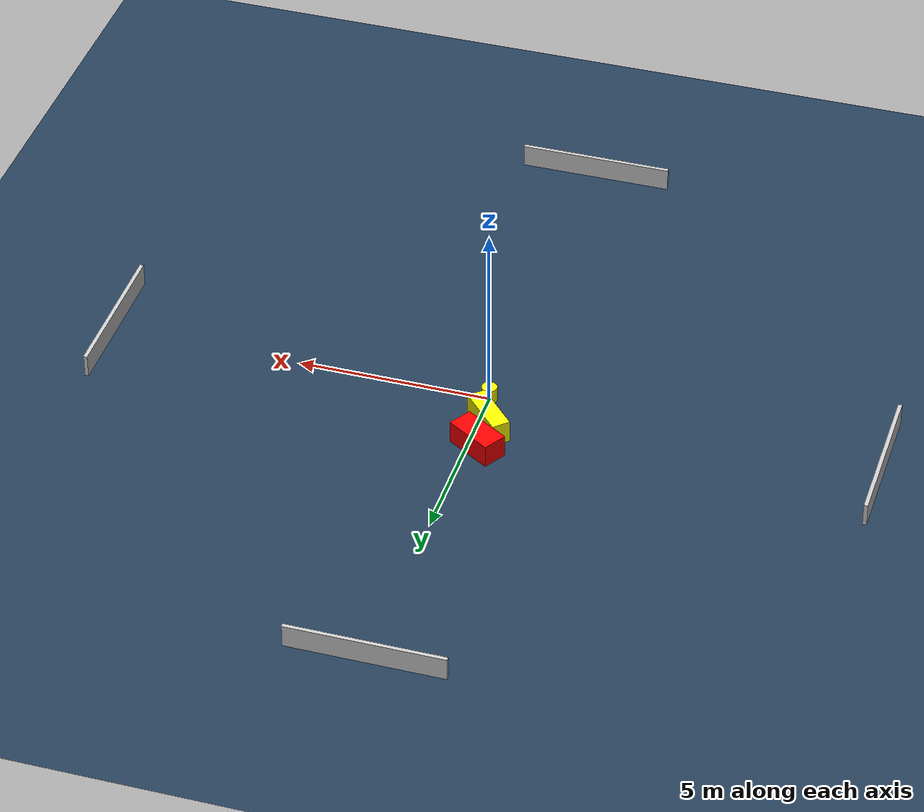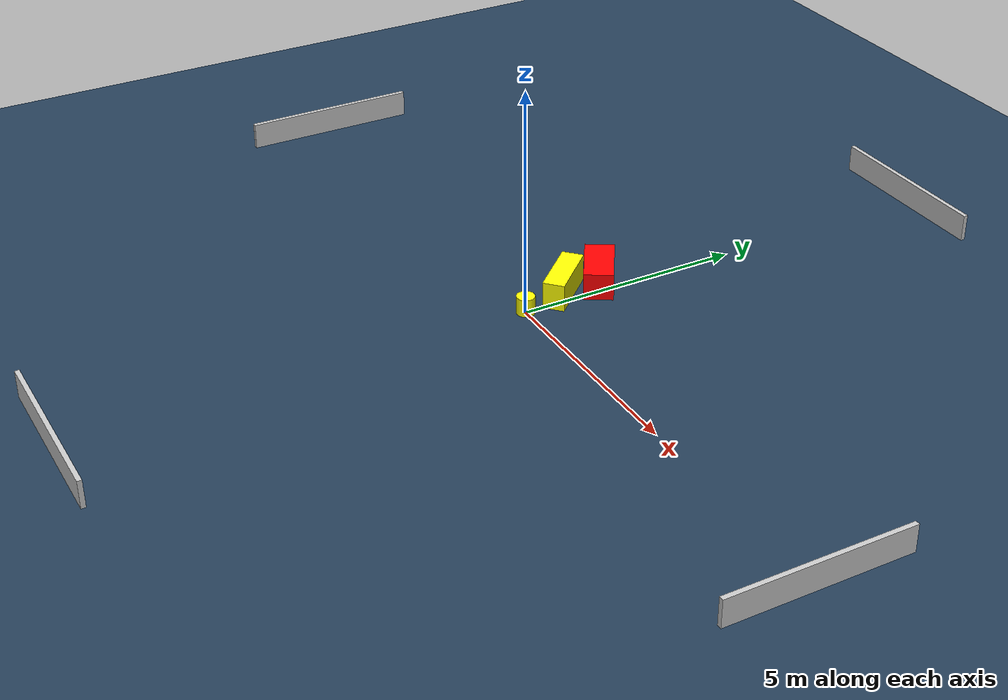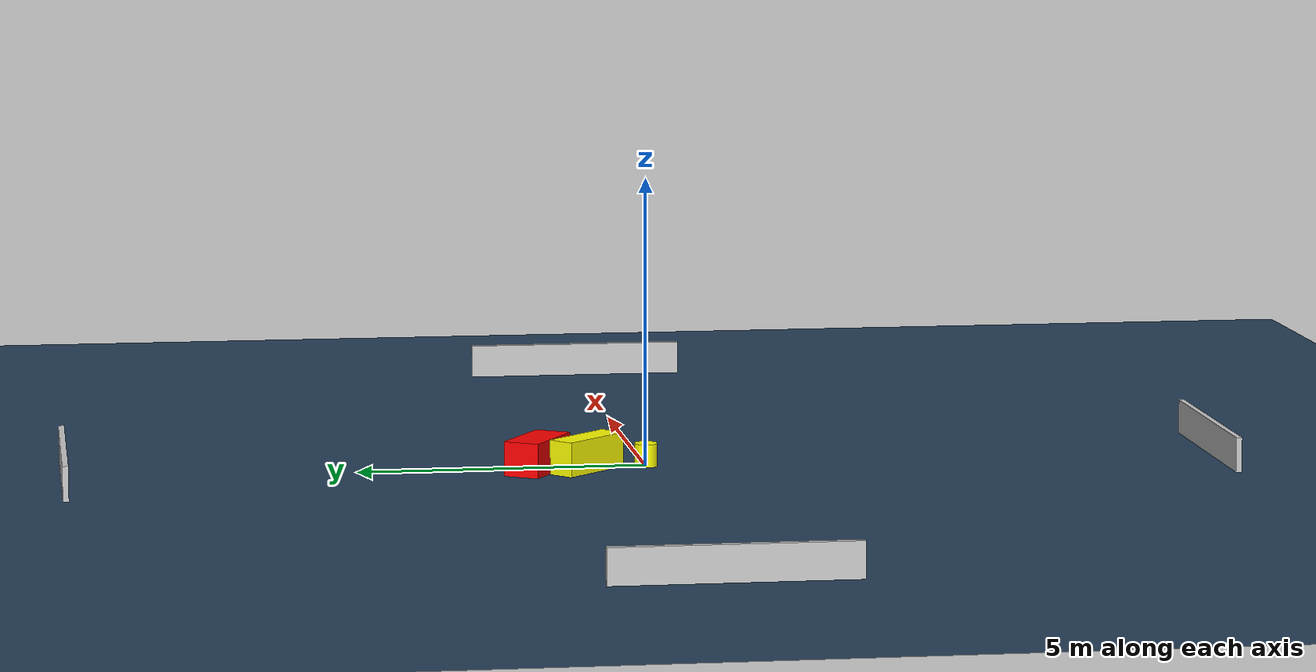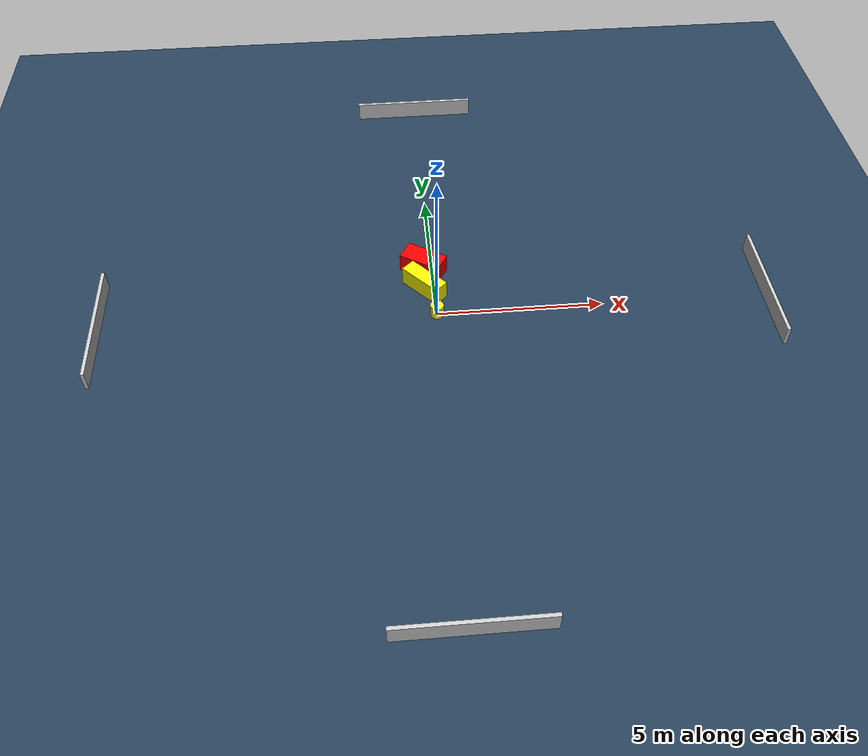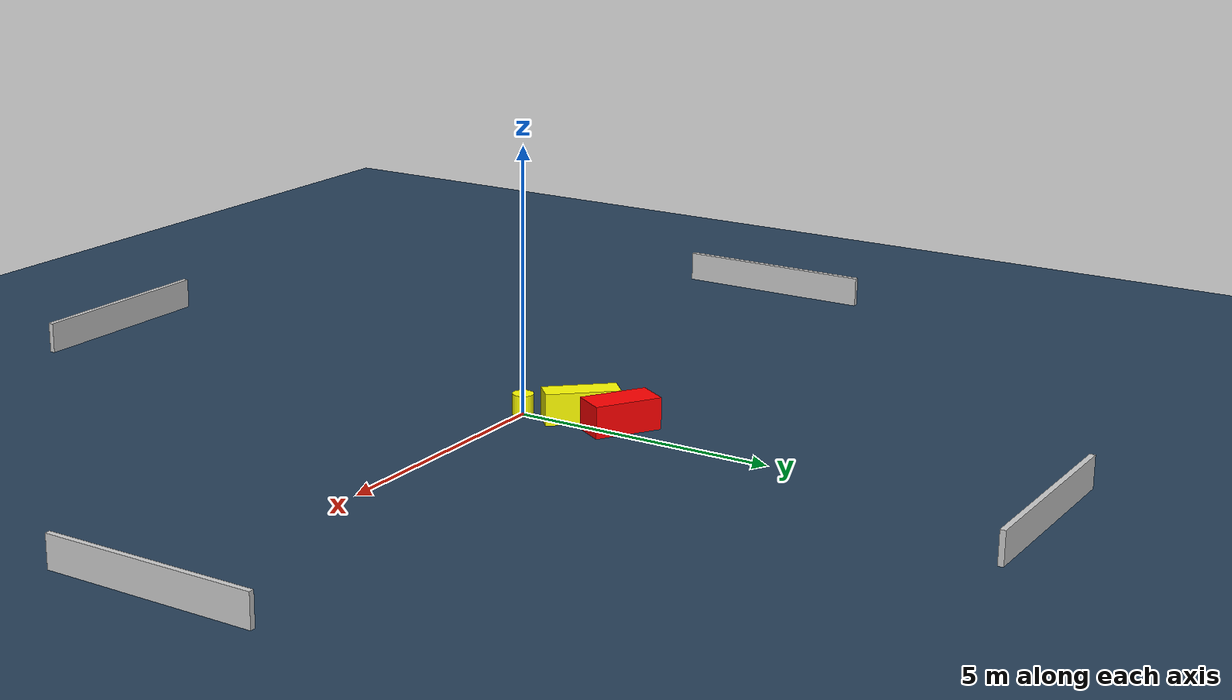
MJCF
<?xml version="1.0" ?>
<mujoco model="generated_environment">
  <option timestep="0.01" integrator="RK4" cone="elliptic"/>
  <default>
    <geom density="1"/>
  </default>
  <asset>
    <texture builtin="gradient" height="3072" name="skybox" rgb1="0.3 0.5 0.7" rgb2="0 0 0" type="skybox" width="512"/>
    <texture builtin="checker" height="300" name="groundplane" rgb1="0.2 0.3 0.4" rgb2="0.1 0.2 0.3" type="2d" width="300"/>
    <material name="groundplane" reflectance="0.2" texrepeat="5 5" texture="groundplane"/>
  </asset>
  <worldbody>
    <light dir="0 0 -1" directional="true" pos="0 0 1.5"/>
    <geom condim="3" friction="0.5 0.005 0.001" material="groundplane" name="floor" pos="0 0 0" size="0 0 0.05" type="plane"/>
    <body name="walls">
      <geom name="wall_1" condim="4" pos="-10.0 0.0 0.3" rgba="0.800000011920929 0.800000011920929 0.800000011920929 1.0" size="0.05 2.0 0.3" type="box"/>
      <geom name="wall_2" condim="4" pos="10.0 0.0 0.3" rgba="0.800000011920929 0.800000011920929 0.800000011920929 1.0" size="0.05 2.0 0.3" type="box"/>
      <geom name="wall_3" condim="4" pos="0.0 -10.0 0.3" rgba="0.800000011920929 0.800000011920929 0.800000011920929 1.0" size="2.0 0.05 0.3" type="box"/>
      <geom name="wall_4" condim="4" pos="0.0 10.0 0.3" rgba="0.800000011920929 0.800000011920929 0.800000011920929 1.0" size="2.0 0.05 0.3" type="box"/>
    </body>
    <body name="robot">
      <joint name="joint_x" type="slide" pos="0 0 0" axis="1 0 0"/>
      <joint name="joint_y" type="slide" pos="0 0 0" axis="0 1 0"/>
      <geom name="robot" type="cylinder" pos="0.0 0.0 0.2" size="0.2 0.2 0.0" mass="5.0" friction="1.0 0.005 0.0001" condim="4" rgba="1.0 1.0 0.0 1.0"/>
    </body>
    <body name="obstacle_1_movable">
      <geom name="obstacle_1_movable" condim="4" pos="-0.29552163781079266 1.065964023265195 0.3" euler="0 0 42.86414228327356" friction="0.0 0.005 0.001" rgba="1.0 1.0 0.0 1.0" size="0.2377055714268975 0.6992881389314076 0.3" type="box" mass="0.1"/>
      <joint type="free"/>
    </body>
    <body name="obstacle_2_static">
      <geom name="obstacle_2_static" condim="4" pos="-0.26342251647526793 1.9217531544886661 0.3" euler="0 0 58.350227482339015" friction="0.0 0.005 0.001" rgba="1.0 0.0 0.0 1.0" size="0.3213971755777426 0.6542624100388306 0.3" type="box"/>
    </body>
  </worldbody>
  <actuator>
    <motor name="actuator_x" joint="joint_x" gear="1" ctrlrange="-1 1"/>
    <motor name="actuator_y" joint="joint_y" gear="1" ctrlrange="-1 1"/>
  </actuator>
</mujoco>
